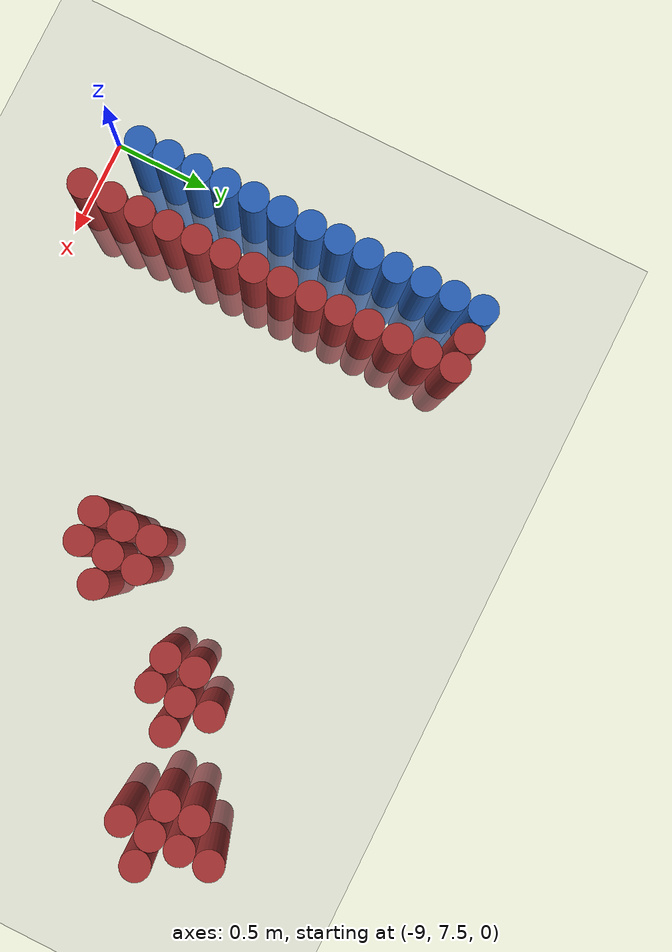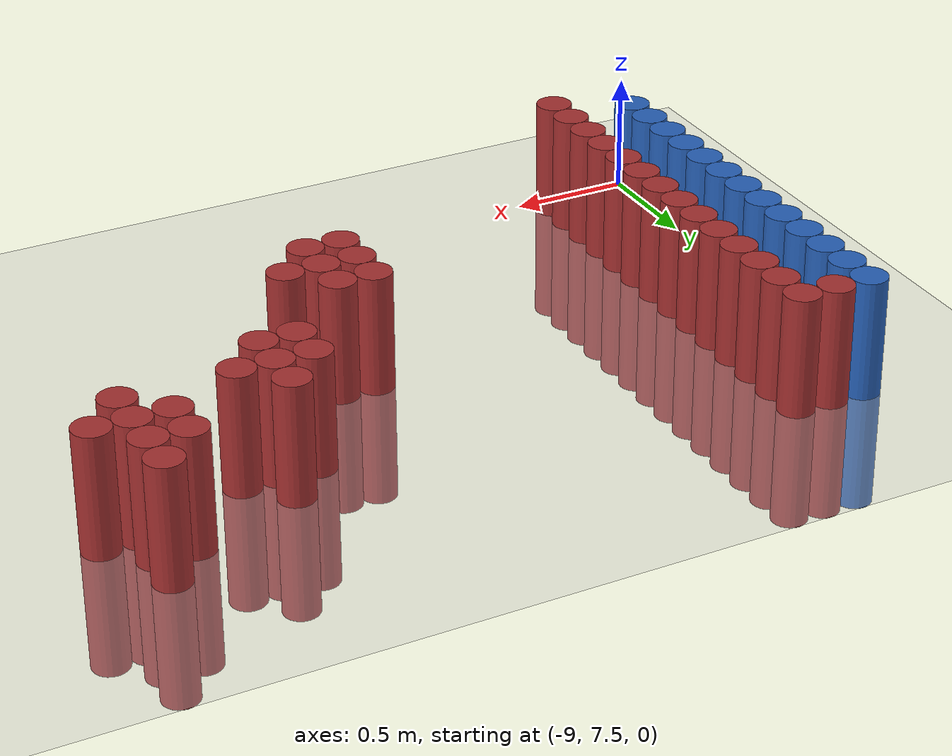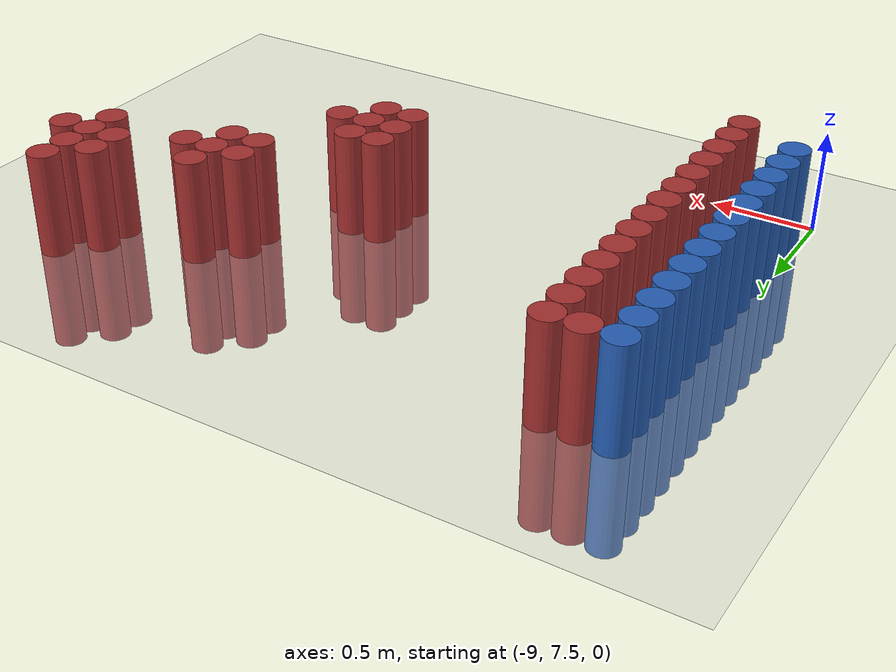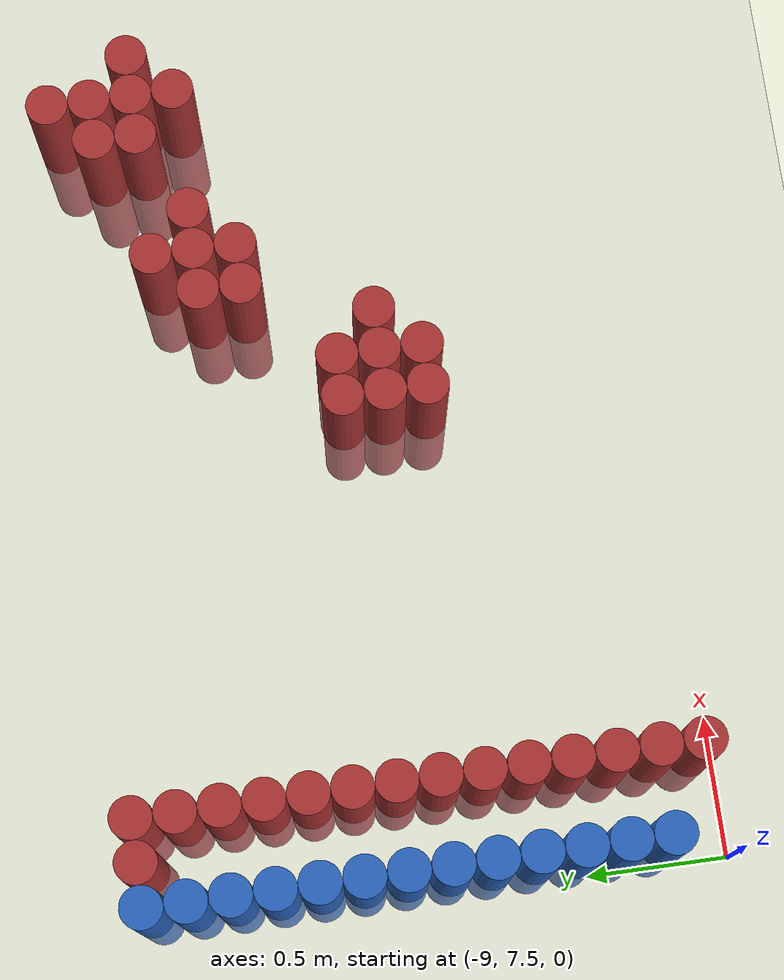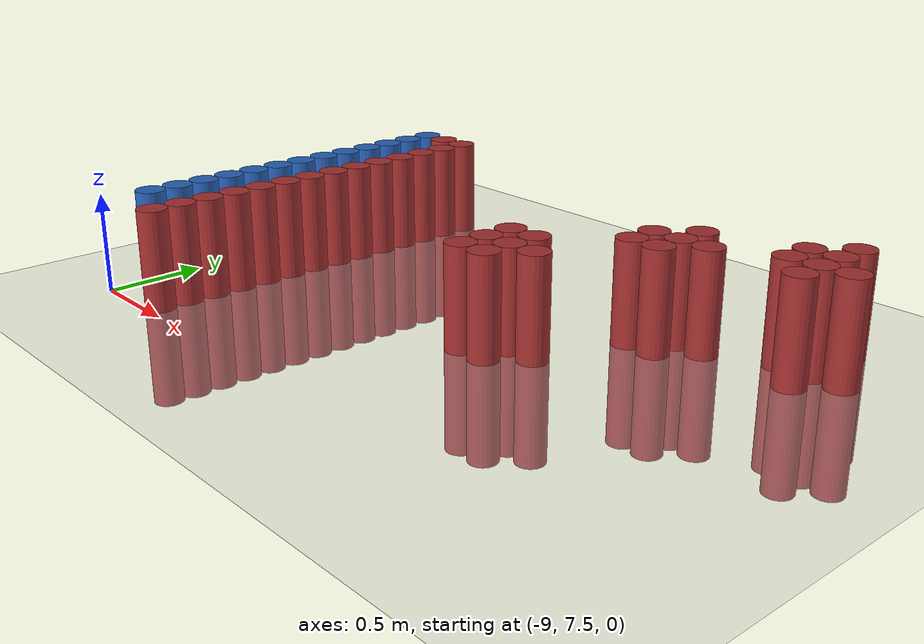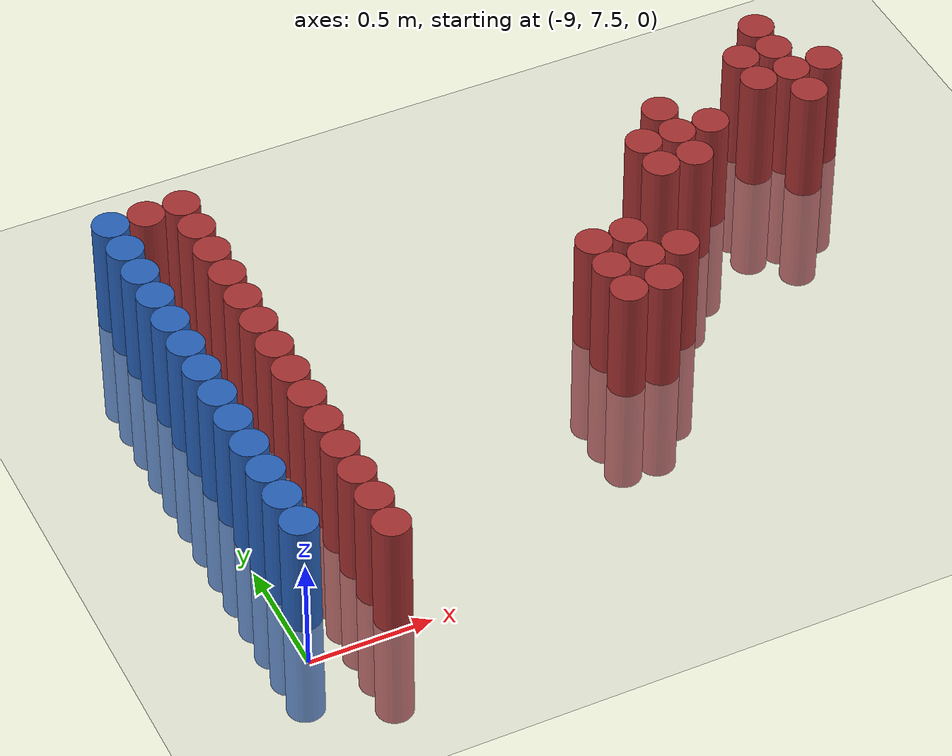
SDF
<sdf version="1.6">
 <world name="default">
  <model name="ground_plane">
   <static>1</static>
   <link name="link">
    <collision name="collision">
     <geometry><plane><normal>0 0 1</normal><size>100 100</size></plane></geometry>
     <surface><friction><ode><mu>100</mu><mu2>50</mu2></ode></friction></surface>
    </collision>
    <visual name="visual">
     <cast_shadows>0</cast_shadows>
     <geometry><plane><normal>0 0 1</normal><size>100 100</size></plane></geometry>
     <material>
      <script><uri>file://media/materials/scripts/gazebo.material</uri><name>Gazebo/Grey</name></script>
     </material>
    </visual>
   </link>
  </model>
  <model name="unit_cylinder_142">
   <static>1</static>
   <pose>-8.925000 7.725000 0.000000 0.000000 0.000000 0.000000</pose>
   <link name="link">
    <inertial>
     <mass>1</mass>
     <inertia><ixx>0.145833</ixx><ixy>0</ixy><ixz>0</ixz><iyy>0.145833</iyy><iyz>0</iyz><izz>0.125</izz></inertia>
    </inertial>
    <collision name="collision">
     <geometry><cylinder><radius>0.075000</radius><length>1</length></cylinder></geometry>
    </collision>
    <visual name="visual">
     <geometry><cylinder><radius>0.075000</radius><length>1</length></cylinder></geometry>
     <material>
      <ambient>0.152000 0.379000 0.720000 1</ambient>
      <diffuse>0.152000 0.379000 0.720000 1</diffuse>
     </material>
     <material>
      <script><name>Gazebo/Grey</name><uri>file://media/materials/scripts/gazebo.material</uri></script>
     </material>
    </visual>
   </link>
  </model>
  <model name="unit_cylinder_143">
   <static>1</static>
   <pose>-8.925000 7.875000 0.000000 0.000000 0.000000 0.000000</pose>
   <link name="link">
    <inertial>
     <mass>1</mass>
     <inertia><ixx>0.145833</ixx><ixy>0</ixy><ixz>0</ixz><iyy>0.145833</iyy><iyz>0</iyz><izz>0.125</izz></inertia>
    </inertial>
    <collision name="collision">
     <geometry><cylinder><radius>0.075000</radius><length>1</length></cylinder></geometry>
    </collision>
    <visual name="visual">
     <geometry><cylinder><radius>0.075000</radius><length>1</length></cylinder></geometry>
     <material>
      <ambient>0.152000 0.379000 0.720000 1</ambient>
      <diffuse>0.152000 0.379000 0.720000 1</diffuse>
     </material>
     <material>
      <script><name>Gazebo/Grey</name><uri>file://media/materials/scripts/gazebo.material</uri></script>
     </material>
    </visual>
   </link>
  </model>
  <model name="unit_cylinder_144">
   <static>1</static>
   <pose>-8.925000 8.025000 0.000000 0.000000 0.000000 0.000000</pose>
   <link name="link">
    <inertial>
     <mass>1</mass>
     <inertia><ixx>0.145833</ixx><ixy>0</ixy><ixz>0</ixz><iyy>0.145833</iyy><iyz>0</iyz><izz>0.125</izz></inertia>
    </inertial>
    <collision name="collision">
     <geometry><cylinder><radius>0.075000</radius><length>1</length></cylinder></geometry>
    </collision>
    <visual name="visual">
     <geometry><cylinder><radius>0.075000</radius><length>1</length></cylinder></geometry>
     <material>
      <ambient>0.152000 0.379000 0.720000 1</ambient>
      <diffuse>0.152000 0.379000 0.720000 1</diffuse>
     </material>
     <material>
      <script><name>Gazebo/Grey</name><uri>file://media/materials/scripts/gazebo.material</uri></script>
     </material>
    </visual>
   </link>
  </model>
  <model name="unit_cylinder_145">
   <static>1</static>
   <pose>-8.925000 8.175000 0.000000 0.000000 0.000000 0.000000</pose>
   <link name="link">
    <inertial>
     <mass>1</mass>
     <inertia><ixx>0.145833</ixx><ixy>0</ixy><ixz>0</ixz><iyy>0.145833</iyy><iyz>0</iyz><izz>0.125</izz></inertia>
    </inertial>
    <collision name="collision">
     <geometry><cylinder><radius>0.075000</radius><length>1</length></cylinder></geometry>
    </collision>
    <visual name="visual">
     <geometry><cylinder><radius>0.075000</radius><length>1</length></cylinder></geometry>
     <material>
      <ambient>0.152000 0.379000 0.720000 1</ambient>
      <diffuse>0.152000 0.379000 0.720000 1</diffuse>
     </material>
     <material>
      <script><name>Gazebo/Grey</name><uri>file://media/materials/scripts/gazebo.material</uri></script>
     </material>
    </visual>
   </link>
  </model>
  <model name="unit_cylinder_146">
   <static>1</static>
   <pose>-8.925000 8.325000 0.000000 0.000000 0.000000 0.000000</pose>
   <link name="link">
    <inertial>
     <mass>1</mass>
     <inertia><ixx>0.145833</ixx><ixy>0</ixy><ixz>0</ixz><iyy>0.145833</iyy><iyz>0</iyz><izz>0.125</izz></inertia>
    </inertial>
    <collision name="collision">
     <geometry><cylinder><radius>0.075000</radius><length>1</length></cylinder></geometry>
    </collision>
    <visual name="visual">
     <geometry><cylinder><radius>0.075000</radius><length>1</length></cylinder></geometry>
     <material>
      <ambient>0.152000 0.379000 0.720000 1</ambient>
      <diffuse>0.152000 0.379000 0.720000 1</diffuse>
     </material>
     <material>
      <script><name>Gazebo/Grey</name><uri>file://media/materials/scripts/gazebo.material</uri></script>
     </material>
    </visual>
   </link>
  </model>
  <model name="unit_cylinder_147">
   <static>1</static>
   <pose>-8.925000 8.475000 0.000000 0.000000 0.000000 0.000000</pose>
   <link name="link">
    <inertial>
     <mass>1</mass>
     <inertia><ixx>0.145833</ixx><ixy>0</ixy><ixz>0</ixz><iyy>0.145833</iyy><iyz>0</iyz><izz>0.125</izz></inertia>
    </inertial>
    <collision name="collision">
     <geometry><cylinder><radius>0.075000</radius><length>1</length></cylinder></geometry>
    </collision>
    <visual name="visual">
     <geometry><cylinder><radius>0.075000</radius><length>1</length></cylinder></geometry>
     <material>
      <ambient>0.152000 0.379000 0.720000 1</ambient>
      <diffuse>0.152000 0.379000 0.720000 1</diffuse>
     </material>
     <material>
      <script><name>Gazebo/Grey</name><uri>file://media/materials/scripts/gazebo.material</uri></script>
     </material>
    </visual>
   </link>
  </model>
  <model name="unit_cylinder_148">
   <static>1</static>
   <pose>-8.925000 8.625000 0.000000 0.000000 0.000000 0.000000</pose>
   <link name="link">
    <inertial>
     <mass>1</mass>
     <inertia><ixx>0.145833</ixx><ixy>0</ixy><ixz>0</ixz><iyy>0.145833</iyy><iyz>0</iyz><izz>0.125</izz></inertia>
    </inertial>
    <collision name="collision">
     <geometry><cylinder><radius>0.075000</radius><length>1</length></cylinder></geometry>
    </collision>
    <visual name="visual">
     <geometry><cylinder><radius>0.075000</radius><length>1</length></cylinder></geometry>
     <material>
      <ambient>0.152000 0.379000 0.720000 1</ambient>
      <diffuse>0.152000 0.379000 0.720000 1</diffuse>
     </material>
     <material>
      <script><name>Gazebo/Grey</name><uri>file://media/materials/scripts/gazebo.material</uri></script>
     </material>
    </visual>
   </link>
  </model>
  <model name="unit_cylinder_149">
   <static>1</static>
   <pose>-8.925000 8.775000 0.000000 0.000000 0.000000 0.000000</pose>
   <link name="link">
    <inertial>
     <mass>1</mass>
     <inertia><ixx>0.145833</ixx><ixy>0</ixy><ixz>0</ixz><iyy>0.145833</iyy><iyz>0</iyz><izz>0.125</izz></inertia>
    </inertial>
    <collision name="collision">
     <geometry><cylinder><radius>0.075000</radius><length>1</length></cylinder></geometry>
    </collision>
    <visual name="visual">
     <geometry><cylinder><radius>0.075000</radius><length>1</length></cylinder></geometry>
     <material>
      <ambient>0.152000 0.379000 0.720000 1</ambient>
      <diffuse>0.152000 0.379000 0.720000 1</diffuse>
     </material>
     <material>
      <script><name>Gazebo/Grey</name><uri>file://media/materials/scripts/gazebo.material</uri></script>
     </material>
    </visual>
   </link>
  </model>
  <model name="unit_cylinder_150">
   <static>1</static>
   <pose>-8.925000 8.925000 0.000000 0.000000 0.000000 0.000000</pose>
   <link name="link">
    <inertial>
     <mass>1</mass>
     <inertia><ixx>0.145833</ixx><ixy>0</ixy><ixz>0</ixz><iyy>0.145833</iyy><iyz>0</iyz><izz>0.125</izz></inertia>
    </inertial>
    <collision name="collision">
     <geometry><cylinder><radius>0.075000</radius><length>1</length></cylinder></geometry>
    </collision>
    <visual name="visual">
     <geometry><cylinder><radius>0.075000</radius><length>1</length></cylinder></geometry>
     <material>
      <ambient>0.152000 0.379000 0.720000 1</ambient>
      <diffuse>0.152000 0.379000 0.720000 1</diffuse>
     </material>
     <material>
      <script><name>Gazebo/Grey</name><uri>file://media/materials/scripts/gazebo.material</uri></script>
     </material>
    </visual>
   </link>
  </model>
  <model name="unit_cylinder_151">
   <static>1</static>
   <pose>-8.925000 9.075000 0.000000 0.000000 0.000000 0.000000</pose>
   <link name="link">
    <inertial>
     <mass>1</mass>
     <inertia><ixx>0.145833</ixx><ixy>0</ixy><ixz>0</ixz><iyy>0.145833</iyy><iyz>0</iyz><izz>0.125</izz></inertia>
    </inertial>
    <collision name="collision">
     <geometry><cylinder><radius>0.075000</radius><length>1</length></cylinder></geometry>
    </collision>
    <visual name="visual">
     <geometry><cylinder><radius>0.075000</radius><length>1</length></cylinder></geometry>
     <material>
      <ambient>0.152000 0.379000 0.720000 1</ambient>
      <diffuse>0.152000 0.379000 0.720000 1</diffuse>
     </material>
     <material>
      <script><name>Gazebo/Grey</name><uri>file://media/materials/scripts/gazebo.material</uri></script>
     </material>
    </visual>
   </link>
  </model>
  <model name="unit_cylinder_152">
   <static>1</static>
   <pose>-8.925000 9.225000 0.000000 0.000000 0.000000 0.000000</pose>
   <link name="link">
    <inertial>
     <mass>1</mass>
     <inertia><ixx>0.145833</ixx><ixy>0</ixy><ixz>0</ixz><iyy>0.145833</iyy><iyz>0</iyz><izz>0.125</izz></inertia>
    </inertial>
    <collision name="collision">
     <geometry><cylinder><radius>0.075000</radius><length>1</length></cylinder></geometry>
    </collision>
    <visual name="visual">
     <geometry><cylinder><radius>0.075000</radius><length>1</length></cylinder></geometry>
     <material>
      <ambient>0.152000 0.379000 0.720000 1</ambient>
      <diffuse>0.152000 0.379000 0.720000 1</diffuse>
     </material>
     <material>
      <script><name>Gazebo/Grey</name><uri>file://media/materials/scripts/gazebo.material</uri></script>
     </material>
    </visual>
   </link>
  </model>
  <model name="unit_cylinder_153">
   <static>1</static>
   <pose>-8.925000 9.375000 0.000000 0.000000 0.000000 0.000000</pose>
   <link name="link">
    <inertial>
     <mass>1</mass>
     <inertia><ixx>0.145833</ixx><ixy>0</ixy><ixz>0</ixz><iyy>0.145833</iyy><iyz>0</iyz><izz>0.125</izz></inertia>
    </inertial>
    <collision name="collision">
     <geometry><cylinder><radius>0.075000</radius><length>1</length></cylinder></geometry>
    </collision>
    <visual name="visual">
     <geometry><cylinder><radius>0.075000</radius><length>1</length></cylinder></geometry>
     <material>
      <ambient>0.152000 0.379000 0.720000 1</ambient>
      <diffuse>0.152000 0.379000 0.720000 1</diffuse>
     </material>
     <material>
      <script><name>Gazebo/Grey</name><uri>file://media/materials/scripts/gazebo.material</uri></script>
     </material>
    </visual>
   </link>
  </model>
  <model name="unit_cylinder_154">
   <static>1</static>
   <pose>-8.925000 9.525000 0.000000 0.000000 0.000000 0.000000</pose>
   <link name="link">
    <inertial>
     <mass>1</mass>
     <inertia><ixx>0.145833</ixx><ixy>0</ixy><ixz>0</ixz><iyy>0.145833</iyy><iyz>0</iyz><izz>0.125</izz></inertia>
    </inertial>
    <collision name="collision">
     <geometry><cylinder><radius>0.075000</radius><length>1</length></cylinder></geometry>
    </collision>
    <visual name="visual">
     <geometry><cylinder><radius>0.075000</radius><length>1</length></cylinder></geometry>
     <material>
      <ambient>0.152000 0.379000 0.720000 1</ambient>
      <diffuse>0.152000 0.379000 0.720000 1</diffuse>
     </material>
     <material>
      <script><name>Gazebo/Grey</name><uri>file://media/materials/scripts/gazebo.material</uri></script>
     </material>
    </visual>
   </link>
  </model>
  <model name="unit_cylinder_156">
   <static>1</static>
   <pose>-8.775000 9.525000 0.000000 0.000000 0.000000 0.000000</pose>
   <link name="link">
    <inertial>
     <mass>1</mass>
     <inertia><ixx>0.145833</ixx><ixy>0</ixy><ixz>0</ixz><iyy>0.145833</iyy><iyz>0</iyz><izz>0.125</izz></inertia>
    </inertial>
    <collision name="collision">
     <geometry><cylinder><radius>0.075000</radius><length>1</length></cylinder></geometry>
    </collision>
    <visual name="visual">
     <geometry><cylinder><radius>0.075000</radius><length>1</length></cylinder></geometry>
     <material>
      <ambient>0.648000 0.192000 0.192000 1</ambient>
      <diffuse>0.648000 0.192000 0.192000 1</diffuse>
     </material>
     <material>
      <script><name>Gazebo/Grey</name><uri>file://media/materials/scripts/gazebo.material</uri></script>
     </material>
    </visual>
   </link>
  </model>
  <model name="unit_cylinder_162">
   <static>1</static>
   <pose>-8.625000 7.575000 0.000000 0.000000 0.000000 0.000000</pose>
   <link name="link">
    <inertial>
     <mass>1</mass>
     <inertia><ixx>0.145833</ixx><ixy>0</ixy><ixz>0</ixz><iyy>0.145833</iyy><iyz>0</iyz><izz>0.125</izz></inertia>
    </inertial>
    <collision name="collision">
     <geometry><cylinder><radius>0.075000</radius><length>1</length></cylinder></geometry>
    </collision>
    <visual name="visual">
     <geometry><cylinder><radius>0.075000</radius><length>1</length></cylinder></geometry>
     <material>
      <ambient>0.648000 0.192000 0.192000 1</ambient>
      <diffuse>0.648000 0.192000 0.192000 1</diffuse>
     </material>
     <material>
      <script><name>Gazebo/Grey</name><uri>file://media/materials/scripts/gazebo.material</uri></script>
     </material>
    </visual>
   </link>
  </model>
  <model name="unit_cylinder_163">
   <static>1</static>
   <pose>-8.625000 7.725000 0.000000 0.000000 0.000000 0.000000</pose>
   <link name="link">
    <inertial>
     <mass>1</mass>
     <inertia><ixx>0.145833</ixx><ixy>0</ixy><ixz>0</ixz><iyy>0.145833</iyy><iyz>0</iyz><izz>0.125</izz></inertia>
    </inertial>
    <collision name="collision">
     <geometry><cylinder><radius>0.075000</radius><length>1</length></cylinder></geometry>
    </collision>
    <visual name="visual">
     <geometry><cylinder><radius>0.075000</radius><length>1</length></cylinder></geometry>
     <material>
      <ambient>0.648000 0.192000 0.192000 1</ambient>
      <diffuse>0.648000 0.192000 0.192000 1</diffuse>
     </material>
     <material>
      <script><name>Gazebo/Grey</name><uri>file://media/materials/scripts/gazebo.material</uri></script>
     </material>
    </visual>
   </link>
  </model>
  <model name="unit_cylinder_164">
   <static>1</static>
   <pose>-8.625000 7.875000 0.000000 0.000000 0.000000 0.000000</pose>
   <link name="link">
    <inertial>
     <mass>1</mass>
     <inertia><ixx>0.145833</ixx><ixy>0</ixy><ixz>0</ixz><iyy>0.145833</iyy><iyz>0</iyz><izz>0.125</izz></inertia>
    </inertial>
    <collision name="collision">
     <geometry><cylinder><radius>0.075000</radius><length>1</length></cylinder></geometry>
    </collision>
    <visual name="visual">
     <geometry><cylinder><radius>0.075000</radius><length>1</length></cylinder></geometry>
     <material>
      <ambient>0.648000 0.192000 0.192000 1</ambient>
      <diffuse>0.648000 0.192000 0.192000 1</diffuse>
     </material>
     <material>
      <script><name>Gazebo/Grey</name><uri>file://media/materials/scripts/gazebo.material</uri></script>
     </material>
    </visual>
   </link>
  </model>
  <model name="unit_cylinder_165">
   <static>1</static>
   <pose>-8.625000 8.025000 0.000000 0.000000 0.000000 0.000000</pose>
   <link name="link">
    <inertial>
     <mass>1</mass>
     <inertia><ixx>0.145833</ixx><ixy>0</ixy><ixz>0</ixz><iyy>0.145833</iyy><iyz>0</iyz><izz>0.125</izz></inertia>
    </inertial>
    <collision name="collision">
     <geometry><cylinder><radius>0.075000</radius><length>1</length></cylinder></geometry>
    </collision>
    <visual name="visual">
     <geometry><cylinder><radius>0.075000</radius><length>1</length></cylinder></geometry>
     <material>
      <ambient>0.648000 0.192000 0.192000 1</ambient>
      <diffuse>0.648000 0.192000 0.192000 1</diffuse>
     </material>
     <material>
      <script><name>Gazebo/Grey</name><uri>file://media/materials/scripts/gazebo.material</uri></script>
     </material>
    </visual>
   </link>
  </model>
  <model name="unit_cylinder_166">
   <static>1</static>
   <pose>-8.625000 8.175000 0.000000 0.000000 0.000000 0.000000</pose>
   <link name="link">
    <inertial>
     <mass>1</mass>
     <inertia><ixx>0.145833</ixx><ixy>0</ixy><ixz>0</ixz><iyy>0.145833</iyy><iyz>0</iyz><izz>0.125</izz></inertia>
    </inertial>
    <collision name="collision">
     <geometry><cylinder><radius>0.075000</radius><length>1</length></cylinder></geometry>
    </collision>
    <visual name="visual">
     <geometry><cylinder><radius>0.075000</radius><length>1</length></cylinder></geometry>
     <material>
      <ambient>0.648000 0.192000 0.192000 1</ambient>
      <diffuse>0.648000 0.192000 0.192000 1</diffuse>
     </material>
     <material>
      <script><name>Gazebo/Grey</name><uri>file://media/materials/scripts/gazebo.material</uri></script>
     </material>
    </visual>
   </link>
  </model>
  <model name="unit_cylinder_167">
   <static>1</static>
   <pose>-8.625000 8.325000 0.000000 0.000000 0.000000 0.000000</pose>
   <link name="link">
    <inertial>
     <mass>1</mass>
     <inertia><ixx>0.145833</ixx><ixy>0</ixy><ixz>0</ixz><iyy>0.145833</iyy><iyz>0</iyz><izz>0.125</izz></inertia>
    </inertial>
    <collision name="collision">
     <geometry><cylinder><radius>0.075000</radius><length>1</length></cylinder></geometry>
    </collision>
    <visual name="visual">
     <geometry><cylinder><radius>0.075000</radius><length>1</length></cylinder></geometry>
     <material>
      <ambient>0.648000 0.192000 0.192000 1</ambient>
      <diffuse>0.648000 0.192000 0.192000 1</diffuse>
     </material>
     <material>
      <script><name>Gazebo/Grey</name><uri>file://media/materials/scripts/gazebo.material</uri></script>
     </material>
    </visual>
   </link>
  </model>
  <model name="unit_cylinder_168">
   <static>1</static>
   <pose>-8.625000 8.475000 0.000000 0.000000 0.000000 0.000000</pose>
   <link name="link">
    <inertial>
     <mass>1</mass>
     <inertia><ixx>0.145833</ixx><ixy>0</ixy><ixz>0</ixz><iyy>0.145833</iyy><iyz>0</iyz><izz>0.125</izz></inertia>
    </inertial>
    <collision name="collision">
     <geometry><cylinder><radius>0.075000</radius><length>1</length></cylinder></geometry>
    </collision>
    <visual name="visual">
     <geometry><cylinder><radius>0.075000</radius><length>1</length></cylinder></geometry>
     <material>
      <ambient>0.648000 0.192000 0.192000 1</ambient>
      <diffuse>0.648000 0.192000 0.192000 1</diffuse>
     </material>
     <material>
      <script><name>Gazebo/Grey</name><uri>file://media/materials/scripts/gazebo.material</uri></script>
     </material>
    </visual>
   </link>
  </model>
  <model name="unit_cylinder_169">
   <static>1</static>
   <pose>-8.625000 8.625000 0.000000 0.000000 0.000000 0.000000</pose>
   <link name="link">
    <inertial>
     <mass>1</mass>
     <inertia><ixx>0.145833</ixx><ixy>0</ixy><ixz>0</ixz><iyy>0.145833</iyy><iyz>0</iyz><izz>0.125</izz></inertia>
    </inertial>
    <collision name="collision">
     <geometry><cylinder><radius>0.075000</radius><length>1</length></cylinder></geometry>
    </collision>
    <visual name="visual">
     <geometry><cylinder><radius>0.075000</radius><length>1</length></cylinder></geometry>
     <material>
      <ambient>0.648000 0.192000 0.192000 1</ambient>
      <diffuse>0.648000 0.192000 0.192000 1</diffuse>
     </material>
     <material>
      <script><name>Gazebo/Grey</name><uri>file://media/materials/scripts/gazebo.material</uri></script>
     </material>
    </visual>
   </link>
  </model>
  <model name="unit_cylinder_170">
   <static>1</static>
   <pose>-8.625000 8.775000 0.000000 0.000000 0.000000 0.000000</pose>
   <link name="link">
    <inertial>
     <mass>1</mass>
     <inertia><ixx>0.145833</ixx><ixy>0</ixy><ixz>0</ixz><iyy>0.145833</iyy><iyz>0</iyz><izz>0.125</izz></inertia>
    </inertial>
    <collision name="collision">
     <geometry><cylinder><radius>0.075000</radius><length>1</length></cylinder></geometry>
    </collision>
    <visual name="visual">
     <geometry><cylinder><radius>0.075000</radius><length>1</length></cylinder></geometry>
     <material>
      <ambient>0.648000 0.192000 0.192000 1</ambient>
      <diffuse>0.648000 0.192000 0.192000 1</diffuse>
     </material>
     <material>
      <script><name>Gazebo/Grey</name><uri>file://media/materials/scripts/gazebo.material</uri></script>
     </material>
    </visual>
   </link>
  </model>
  <model name="unit_cylinder_171">
   <static>1</static>
   <pose>-8.625000 8.925000 0.000000 0.000000 0.000000 0.000000</pose>
   <link name="link">
    <inertial>
     <mass>1</mass>
     <inertia><ixx>0.145833</ixx><ixy>0</ixy><ixz>0</ixz><iyy>0.145833</iyy><iyz>0</iyz><izz>0.125</izz></inertia>
    </inertial>
    <collision name="collision">
     <geometry><cylinder><radius>0.075000</radius><length>1</length></cylinder></geometry>
    </collision>
    <visual name="visual">
     <geometry><cylinder><radius>0.075000</radius><length>1</length></cylinder></geometry>
     <material>
      <ambient>0.648000 0.192000 0.192000 1</ambient>
      <diffuse>0.648000 0.192000 0.192000 1</diffuse>
     </material>
     <material>
      <script><name>Gazebo/Grey</name><uri>file://media/materials/scripts/gazebo.material</uri></script>
     </material>
    </visual>
   </link>
  </model>
  <model name="unit_cylinder_172">
   <static>1</static>
   <pose>-8.625000 9.075000 0.000000 0.000000 0.000000 0.000000</pose>
   <link name="link">
    <inertial>
     <mass>1</mass>
     <inertia><ixx>0.145833</ixx><ixy>0</ixy><ixz>0</ixz><iyy>0.145833</iyy><iyz>0</iyz><izz>0.125</izz></inertia>
    </inertial>
    <collision name="collision">
     <geometry><cylinder><radius>0.075000</radius><length>1</length></cylinder></geometry>
    </collision>
    <visual name="visual">
     <geometry><cylinder><radius>0.075000</radius><length>1</length></cylinder></geometry>
     <material>
      <ambient>0.648000 0.192000 0.192000 1</ambient>
      <diffuse>0.648000 0.192000 0.192000 1</diffuse>
     </material>
     <material>
      <script><name>Gazebo/Grey</name><uri>file://media/materials/scripts/gazebo.material</uri></script>
     </material>
    </visual>
   </link>
  </model>
  <model name="unit_cylinder_173">
   <static>1</static>
   <pose>-8.625000 9.225000 0.000000 0.000000 0.000000 0.000000</pose>
   <link name="link">
    <inertial>
     <mass>1</mass>
     <inertia><ixx>0.145833</ixx><ixy>0</ixy><ixz>0</ixz><iyy>0.145833</iyy><iyz>0</iyz><izz>0.125</izz></inertia>
    </inertial>
    <collision name="collision">
     <geometry><cylinder><radius>0.075000</radius><length>1</length></cylinder></geometry>
    </collision>
    <visual name="visual">
     <geometry><cylinder><radius>0.075000</radius><length>1</length></cylinder></geometry>
     <material>
      <ambient>0.648000 0.192000 0.192000 1</ambient>
      <diffuse>0.648000 0.192000 0.192000 1</diffuse>
     </material>
     <material>
      <script><name>Gazebo/Grey</name><uri>file://media/materials/scripts/gazebo.material</uri></script>
     </material>
    </visual>
   </link>
  </model>
  <model name="unit_cylinder_174">
   <static>1</static>
   <pose>-8.625000 9.375000 0.000000 0.000000 0.000000 0.000000</pose>
   <link name="link">
    <inertial>
     <mass>1</mass>
     <inertia><ixx>0.145833</ixx><ixy>0</ixy><ixz>0</ixz><iyy>0.145833</iyy><iyz>0</iyz><izz>0.125</izz></inertia>
    </inertial>
    <collision name="collision">
     <geometry><cylinder><radius>0.075000</radius><length>1</length></cylinder></geometry>
    </collision>
    <visual name="visual">
     <geometry><cylinder><radius>0.075000</radius><length>1</length></cylinder></geometry>
     <material>
      <ambient>0.648000 0.192000 0.192000 1</ambient>
      <diffuse>0.648000 0.192000 0.192000 1</diffuse>
     </material>
     <material>
      <script><name>Gazebo/Grey</name><uri>file://media/materials/scripts/gazebo.material</uri></script>
     </material>
    </visual>
   </link>
  </model>
  <model name="unit_cylinder_175">
   <static>1</static>
   <pose>-8.625000 9.525000 0.000000 0.000000 0.000000 0.000000</pose>
   <link name="link">
    <inertial>
     <mass>1</mass>
     <inertia><ixx>0.145833</ixx><ixy>0</ixy><ixz>0</ixz><iyy>0.145833</iyy><iyz>0</iyz><izz>0.125</izz></inertia>
    </inertial>
    <collision name="collision">
     <geometry><cylinder><radius>0.075000</radius><length>1</length></cylinder></geometry>
    </collision>
    <visual name="visual">
     <geometry><cylinder><radius>0.075000</radius><length>1</length></cylinder></geometry>
     <material>
      <ambient>0.648000 0.192000 0.192000 1</ambient>
      <diffuse>0.648000 0.192000 0.192000 1</diffuse>
     </material>
     <material>
      <script><name>Gazebo/Grey</name><uri>file://media/materials/scripts/gazebo.material</uri></script>
     </material>
    </visual>
   </link>
  </model>
  <model name="unit_cylinder_201">
   <static>1</static>
   <pose>-7.275000 8.325000 0.000000 0.000000 0.000000 0.000000</pose>
   <link name="link">
    <inertial>
     <mass>1</mass>
     <inertia><ixx>0.145833</ixx><ixy>0</ixy><ixz>0</ixz><iyy>0.145833</iyy><iyz>0</iyz><izz>0.125</izz></inertia>
    </inertial>
    <collision name="collision">
     <geometry><cylinder><radius>0.075000</radius><length>1</length></cylinder></geometry>
    </collision>
    <visual name="visual">
     <geometry><cylinder><radius>0.075000</radius><length>1</length></cylinder></geometry>
     <material>
      <ambient>0.648000 0.192000 0.192000 1</ambient>
      <diffuse>0.648000 0.192000 0.192000 1</diffuse>
     </material>
     <material>
      <script><name>Gazebo/Grey</name><uri>file://media/materials/scripts/gazebo.material</uri></script>
     </material>
    </visual>
   </link>
  </model>
  <model name="unit_cylinder_202">
   <static>1</static>
   <pose>-7.275000 8.475000 0.000000 0.000000 0.000000 0.000000</pose>
   <link name="link">
    <inertial>
     <mass>1</mass>
     <inertia><ixx>0.145833</ixx><ixy>0</ixy><ixz>0</ixz><iyy>0.145833</iyy><iyz>0</iyz><izz>0.125</izz></inertia>
    </inertial>
    <collision name="collision">
     <geometry><cylinder><radius>0.075000</radius><length>1</length></cylinder></geometry>
    </collision>
    <visual name="visual">
     <geometry><cylinder><radius>0.075000</radius><length>1</length></cylinder></geometry>
     <material>
      <ambient>0.648000 0.192000 0.192000 1</ambient>
      <diffuse>0.648000 0.192000 0.192000 1</diffuse>
     </material>
     <material>
      <script><name>Gazebo/Grey</name><uri>file://media/materials/scripts/gazebo.material</uri></script>
     </material>
    </visual>
   </link>
  </model>
  <model name="unit_cylinder_203">
   <static>1</static>
   <pose>-7.275000 8.625000 0.000000 0.000000 0.000000 0.000000</pose>
   <link name="link">
    <inertial>
     <mass>1</mass>
     <inertia><ixx>0.145833</ixx><ixy>0</ixy><ixz>0</ixz><iyy>0.145833</iyy><iyz>0</iyz><izz>0.125</izz></inertia>
    </inertial>
    <collision name="collision">
     <geometry><cylinder><radius>0.075000</radius><length>1</length></cylinder></geometry>
    </collision>
    <visual name="visual">
     <geometry><cylinder><radius>0.075000</radius><length>1</length></cylinder></geometry>
     <material>
      <ambient>0.648000 0.192000 0.192000 1</ambient>
      <diffuse>0.648000 0.192000 0.192000 1</diffuse>
     </material>
     <material>
      <script><name>Gazebo/Grey</name><uri>file://media/materials/scripts/gazebo.material</uri></script>
     </material>
    </visual>
   </link>
  </model>
  <model name="unit_cylinder_204">
   <static>1</static>
   <pose>-7.125000 8.325000 0.000000 0.000000 0.000000 0.000000</pose>
   <link name="link">
    <inertial>
     <mass>1</mass>
     <inertia><ixx>0.145833</ixx><ixy>0</ixy><ixz>0</ixz><iyy>0.145833</iyy><iyz>0</iyz><izz>0.125</izz></inertia>
    </inertial>
    <collision name="collision">
     <geometry><cylinder><radius>0.075000</radius><length>1</length></cylinder></geometry>
    </collision>
    <visual name="visual">
     <geometry><cylinder><radius>0.075000</radius><length>1</length></cylinder></geometry>
     <material>
      <ambient>0.648000 0.192000 0.192000 1</ambient>
      <diffuse>0.648000 0.192000 0.192000 1</diffuse>
     </material>
     <material>
      <script><name>Gazebo/Grey</name><uri>file://media/materials/scripts/gazebo.material</uri></script>
     </material>
    </visual>
   </link>
  </model>
  <model name="unit_cylinder_205">
   <static>1</static>
   <pose>-7.125000 8.475000 0.000000 0.000000 0.000000 0.000000</pose>
   <link name="link">
    <inertial>
     <mass>1</mass>
     <inertia><ixx>0.145833</ixx><ixy>0</ixy><ixz>0</ixz><iyy>0.145833</iyy><iyz>0</iyz><izz>0.125</izz></inertia>
    </inertial>
    <collision name="collision">
     <geometry><cylinder><radius>0.075000</radius><length>1</length></cylinder></geometry>
    </collision>
    <visual name="visual">
     <geometry><cylinder><radius>0.075000</radius><length>1</length></cylinder></geometry>
     <material>
      <ambient>0.648000 0.192000 0.192000 1</ambient>
      <diffuse>0.648000 0.192000 0.192000 1</diffuse>
     </material>
     <material>
      <script><name>Gazebo/Grey</name><uri>file://media/materials/scripts/gazebo.material</uri></script>
     </material>
    </visual>
   </link>
  </model>
  <model name="unit_cylinder_206">
   <static>1</static>
   <pose>-7.125000 8.625000 0.000000 0.000000 0.000000 0.000000</pose>
   <link name="link">
    <inertial>
     <mass>1</mass>
     <inertia><ixx>0.145833</ixx><ixy>0</ixy><ixz>0</ixz><iyy>0.145833</iyy><iyz>0</iyz><izz>0.125</izz></inertia>
    </inertial>
    <collision name="collision">
     <geometry><cylinder><radius>0.075000</radius><length>1</length></cylinder></geometry>
    </collision>
    <visual name="visual">
     <geometry><cylinder><radius>0.075000</radius><length>1</length></cylinder></geometry>
     <material>
      <ambient>0.648000 0.192000 0.192000 1</ambient>
      <diffuse>0.648000 0.192000 0.192000 1</diffuse>
     </material>
     <material>
      <script><name>Gazebo/Grey</name><uri>file://media/materials/scripts/gazebo.material</uri></script>
     </material>
    </visual>
   </link>
  </model>
  <model name="unit_cylinder_207">
   <static>1</static>
   <pose>-6.975000 8.475000 0.000000 0.000000 0.000000 0.000000</pose>
   <link name="link">
    <inertial>
     <mass>1</mass>
     <inertia><ixx>0.145833</ixx><ixy>0</ixy><ixz>0</ixz><iyy>0.145833</iyy><iyz>0</iyz><izz>0.125</izz></inertia>
    </inertial>
    <collision name="collision">
     <geometry><cylinder><radius>0.075000</radius><length>1</length></cylinder></geometry>
    </collision>
    <visual name="visual">
     <geometry><cylinder><radius>0.075000</radius><length>1</length></cylinder></geometry>
     <material>
      <ambient>0.648000 0.192000 0.192000 1</ambient>
      <diffuse>0.648000 0.192000 0.192000 1</diffuse>
     </material>
     <material>
      <script><name>Gazebo/Grey</name><uri>file://media/materials/scripts/gazebo.material</uri></script>
     </material>
    </visual>
   </link>
  </model>
  <model name="unit_cylinder_208">
   <static>1</static>
   <pose>-6.825000 8.925000 0.000000 0.000000 0.000000 0.000000</pose>
   <link name="link">
    <inertial>
     <mass>1</mass>
     <inertia><ixx>0.145833</ixx><ixy>0</ixy><ixz>0</ixz><iyy>0.145833</iyy><iyz>0</iyz><izz>0.125</izz></inertia>
    </inertial>
    <collision name="collision">
     <geometry><cylinder><radius>0.075000</radius><length>1</length></cylinder></geometry>
    </collision>
    <visual name="visual">
     <geometry><cylinder><radius>0.075000</radius><length>1</length></cylinder></geometry>
     <material>
      <ambient>0.648000 0.192000 0.192000 1</ambient>
      <diffuse>0.648000 0.192000 0.192000 1</diffuse>
     </material>
     <material>
      <script><name>Gazebo/Grey</name><uri>file://media/materials/scripts/gazebo.material</uri></script>
     </material>
    </visual>
   </link>
  </model>
  <model name="unit_cylinder_209">
   <static>1</static>
   <pose>-6.825000 9.075000 0.000000 0.000000 0.000000 0.000000</pose>
   <link name="link">
    <inertial>
     <mass>1</mass>
     <inertia><ixx>0.145833</ixx><ixy>0</ixy><ixz>0</ixz><iyy>0.145833</iyy><iyz>0</iyz><izz>0.125</izz></inertia>
    </inertial>
    <collision name="collision">
     <geometry><cylinder><radius>0.075000</radius><length>1</length></cylinder></geometry>
    </collision>
    <visual name="visual">
     <geometry><cylinder><radius>0.075000</radius><length>1</length></cylinder></geometry>
     <material>
      <ambient>0.648000 0.192000 0.192000 1</ambient>
      <diffuse>0.648000 0.192000 0.192000 1</diffuse>
     </material>
     <material>
      <script><name>Gazebo/Grey</name><uri>file://media/materials/scripts/gazebo.material</uri></script>
     </material>
    </visual>
   </link>
  </model>
  <model name="unit_cylinder_212">
   <static>1</static>
   <pose>-6.675000 8.925000 0.000000 0.000000 0.000000 0.000000</pose>
   <link name="link">
    <inertial>
     <mass>1</mass>
     <inertia><ixx>0.145833</ixx><ixy>0</ixy><ixz>0</ixz><iyy>0.145833</iyy><iyz>0</iyz><izz>0.125</izz></inertia>
    </inertial>
    <collision name="collision">
     <geometry><cylinder><radius>0.075000</radius><length>1</length></cylinder></geometry>
    </collision>
    <visual name="visual">
     <geometry><cylinder><radius>0.075000</radius><length>1</length></cylinder></geometry>
     <material>
      <ambient>0.648000 0.192000 0.192000 1</ambient>
      <diffuse>0.648000 0.192000 0.192000 1</diffuse>
     </material>
     <material>
      <script><name>Gazebo/Grey</name><uri>file://media/materials/scripts/gazebo.material</uri></script>
     </material>
    </visual>
   </link>
  </model>
  <model name="unit_cylinder_213">
   <static>1</static>
   <pose>-6.675000 9.075000 0.000000 0.000000 0.000000 0.000000</pose>
   <link name="link">
    <inertial>
     <mass>1</mass>
     <inertia><ixx>0.145833</ixx><ixy>0</ixy><ixz>0</ixz><iyy>0.145833</iyy><iyz>0</iyz><izz>0.125</izz></inertia>
    </inertial>
    <collision name="collision">
     <geometry><cylinder><radius>0.075000</radius><length>1</length></cylinder></geometry>
    </collision>
    <visual name="visual">
     <geometry><cylinder><radius>0.075000</radius><length>1</length></cylinder></geometry>
     <material>
      <ambient>0.648000 0.192000 0.192000 1</ambient>
      <diffuse>0.648000 0.192000 0.192000 1</diffuse>
     </material>
     <material>
      <script><name>Gazebo/Grey</name><uri>file://media/materials/scripts/gazebo.material</uri></script>
     </material>
    </visual>
   </link>
  </model>
  <model name="unit_cylinder_214">
   <static>1</static>
   <pose>-6.675000 9.225000 0.000000 0.000000 0.000000 0.000000</pose>
   <link name="link">
    <inertial>
     <mass>1</mass>
     <inertia><ixx>0.145833</ixx><ixy>0</ixy><ixz>0</ixz><iyy>0.145833</iyy><iyz>0</iyz><izz>0.125</izz></inertia>
    </inertial>
    <collision name="collision">
     <geometry><cylinder><radius>0.075000</radius><length>1</length></cylinder></geometry>
    </collision>
    <visual name="visual">
     <geometry><cylinder><radius>0.075000</radius><length>1</length></cylinder></geometry>
     <material>
      <ambient>0.648000 0.192000 0.192000 1</ambient>
      <diffuse>0.648000 0.192000 0.192000 1</diffuse>
     </material>
     <material>
      <script><name>Gazebo/Grey</name><uri>file://media/materials/scripts/gazebo.material</uri></script>
     </material>
    </visual>
   </link>
  </model>
  <model name="unit_cylinder_218">
   <static>1</static>
   <pose>-6.525000 9.075000 0.000000 0.000000 0.000000 0.000000</pose>
   <link name="link">
    <inertial>
     <mass>1</mass>
     <inertia><ixx>0.145833</ixx><ixy>0</ixy><ixz>0</ixz><iyy>0.145833</iyy><iyz>0</iyz><izz>0.125</izz></inertia>
    </inertial>
    <collision name="collision">
     <geometry><cylinder><radius>0.075000</radius><length>1</length></cylinder></geometry>
    </collision>
    <visual name="visual">
     <geometry><cylinder><radius>0.075000</radius><length>1</length></cylinder></geometry>
     <material>
      <ambient>0.648000 0.192000 0.192000 1</ambient>
      <diffuse>0.648000 0.192000 0.192000 1</diffuse>
     </material>
     <material>
      <script><name>Gazebo/Grey</name><uri>file://media/materials/scripts/gazebo.material</uri></script>
     </material>
    </visual>
   </link>
  </model>
  <model name="unit_cylinder_227">
   <static>1</static>
   <pose>-6.225000 9.225000 0.000000 0.000000 0.000000 0.000000</pose>
   <link name="link">
    <inertial>
     <mass>1</mass>
     <inertia><ixx>0.145833</ixx><ixy>0</ixy><ixz>0</ixz><iyy>0.145833</iyy><iyz>0</iyz><izz>0.125</izz></inertia>
    </inertial>
    <collision name="collision">
     <geometry><cylinder><radius>0.075000</radius><length>1</length></cylinder></geometry>
    </collision>
    <visual name="visual">
     <geometry><cylinder><radius>0.075000</radius><length>1</length></cylinder></geometry>
     <material>
      <ambient>0.648000 0.192000 0.192000 1</ambient>
      <diffuse>0.648000 0.192000 0.192000 1</diffuse>
     </material>
     <material>
      <script><name>Gazebo/Grey</name><uri>file://media/materials/scripts/gazebo.material</uri></script>
     </material>
    </visual>
   </link>
  </model>
  <model name="unit_cylinder_228">
   <static>1</static>
   <pose>-6.225000 9.375000 0.000000 0.000000 0.000000 0.000000</pose>
   <link name="link">
    <inertial>
     <mass>1</mass>
     <inertia><ixx>0.145833</ixx><ixy>0</ixy><ixz>0</ixz><iyy>0.145833</iyy><iyz>0</iyz><izz>0.125</izz></inertia>
    </inertial>
    <collision name="collision">
     <geometry><cylinder><radius>0.075000</radius><length>1</length></cylinder></geometry>
    </collision>
    <visual name="visual">
     <geometry><cylinder><radius>0.075000</radius><length>1</length></cylinder></geometry>
     <material>
      <ambient>0.648000 0.192000 0.192000 1</ambient>
      <diffuse>0.648000 0.192000 0.192000 1</diffuse>
     </material>
     <material>
      <script><name>Gazebo/Grey</name><uri>file://media/materials/scripts/gazebo.material</uri></script>
     </material>
    </visual>
   </link>
  </model>
  <model name="unit_cylinder_238">
   <static>1</static>
   <pose>-6.075000 9.075000 0.000000 0.000000 0.000000 0.000000</pose>
   <link name="link">
    <inertial>
     <mass>1</mass>
     <inertia><ixx>0.145833</ixx><ixy>0</ixy><ixz>0</ixz><iyy>0.145833</iyy><iyz>0</iyz><izz>0.125</izz></inertia>
    </inertial>
    <collision name="collision">
     <geometry><cylinder><radius>0.075000</radius><length>1</length></cylinder></geometry>
    </collision>
    <visual name="visual">
     <geometry><cylinder><radius>0.075000</radius><length>1</length></cylinder></geometry>
     <material>
      <ambient>0.648000 0.192000 0.192000 1</ambient>
      <diffuse>0.648000 0.192000 0.192000 1</diffuse>
     </material>
     <material>
      <script><name>Gazebo/Grey</name><uri>file://media/materials/scripts/gazebo.material</uri></script>
     </material>
    </visual>
   </link>
  </model>
  <model name="unit_cylinder_239">
   <static>1</static>
   <pose>-6.075000 9.225000 0.000000 0.000000 0.000000 0.000000</pose>
   <link name="link">
    <inertial>
     <mass>1</mass>
     <inertia><ixx>0.145833</ixx><ixy>0</ixy><ixz>0</ixz><iyy>0.145833</iyy><iyz>0</iyz><izz>0.125</izz></inertia>
    </inertial>
    <collision name="collision">
     <geometry><cylinder><radius>0.075000</radius><length>1</length></cylinder></geometry>
    </collision>
    <visual name="visual">
     <geometry><cylinder><radius>0.075000</radius><length>1</length></cylinder></geometry>
     <material>
      <ambient>0.648000 0.192000 0.192000 1</ambient>
      <diffuse>0.648000 0.192000 0.192000 1</diffuse>
     </material>
     <material>
      <script><name>Gazebo/Grey</name><uri>file://media/materials/scripts/gazebo.material</uri></script>
     </material>
    </visual>
   </link>
  </model>
  <model name="unit_cylinder_240">
   <static>1</static>
   <pose>-6.075000 9.375000 0.000000 0.000000 0.000000 0.000000</pose>
   <link name="link">
    <inertial>
     <mass>1</mass>
     <inertia><ixx>0.145833</ixx><ixy>0</ixy><ixz>0</ixz><iyy>0.145833</iyy><iyz>0</iyz><izz>0.125</izz></inertia>
    </inertial>
    <collision name="collision">
     <geometry><cylinder><radius>0.075000</radius><length>1</length></cylinder></geometry>
    </collision>
    <visual name="visual">
     <geometry><cylinder><radius>0.075000</radius><length>1</length></cylinder></geometry>
     <material>
      <ambient>0.648000 0.192000 0.192000 1</ambient>
      <diffuse>0.648000 0.192000 0.192000 1</diffuse>
     </material>
     <material>
      <script><name>Gazebo/Grey</name><uri>file://media/materials/scripts/gazebo.material</uri></script>
     </material>
    </visual>
   </link>
  </model>
  <model name="unit_cylinder_241">
   <static>1</static>
   <pose>-6.075000 9.525000 0.000000 0.000000 0.000000 0.000000</pose>
   <link name="link">
    <inertial>
     <mass>1</mass>
     <inertia><ixx>0.145833</ixx><ixy>0</ixy><ixz>0</ixz><iyy>0.145833</iyy><iyz>0</iyz><izz>0.125</izz></inertia>
    </inertial>
    <collision name="collision">
     <geometry><cylinder><radius>0.075000</radius><length>1</length></cylinder></geometry>
    </collision>
    <visual name="visual">
     <geometry><cylinder><radius>0.075000</radius><length>1</length></cylinder></geometry>
     <material>
      <ambient>0.648000 0.192000 0.192000 1</ambient>
      <diffuse>0.648000 0.192000 0.192000 1</diffuse>
     </material>
     <material>
      <script><name>Gazebo/Grey</name><uri>file://media/materials/scripts/gazebo.material</uri></script>
     </material>
    </visual>
   </link>
  </model>
  <model name="unit_cylinder_246">
   <static>1</static>
   <pose>-5.925000 9.225000 0.000000 0.000000 0.000000 0.000000</pose>
   <link name="link">
    <inertial>
     <mass>1</mass>
     <inertia><ixx>0.145833</ixx><ixy>0</ixy><ixz>0</ixz><iyy>0.145833</iyy><iyz>0</iyz><izz>0.125</izz></inertia>
    </inertial>
    <collision name="collision">
     <geometry><cylinder><radius>0.075000</radius><length>1</length></cylinder></geometry>
    </collision>
    <visual name="visual">
     <geometry><cylinder><radius>0.075000</radius><length>1</length></cylinder></geometry>
     <material>
      <ambient>0.648000 0.192000 0.192000 1</ambient>
      <diffuse>0.648000 0.192000 0.192000 1</diffuse>
     </material>
     <material>
      <script><name>Gazebo/Grey</name><uri>file://media/materials/scripts/gazebo.material</uri></script>
     </material>
    </visual>
   </link>
  </model>
 </world>
</sdf>
